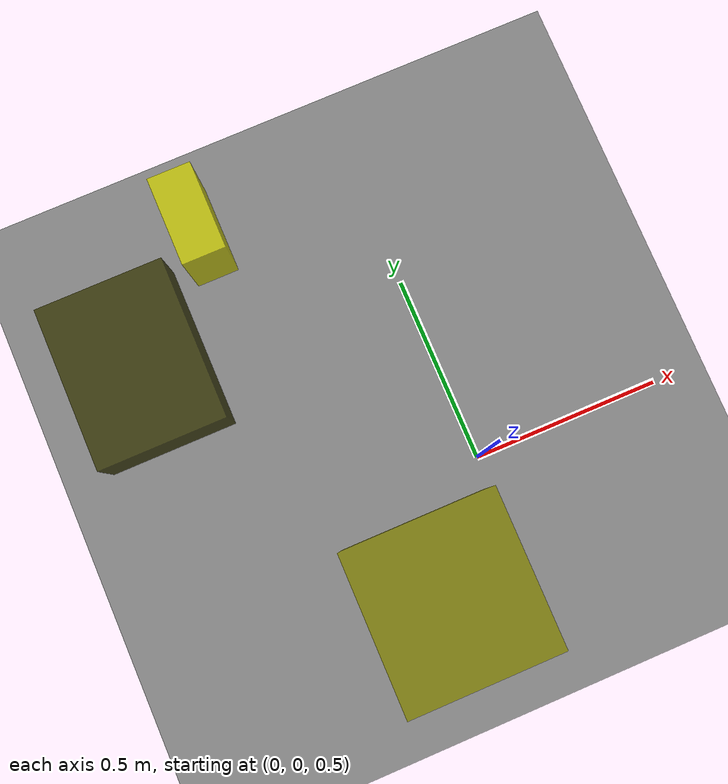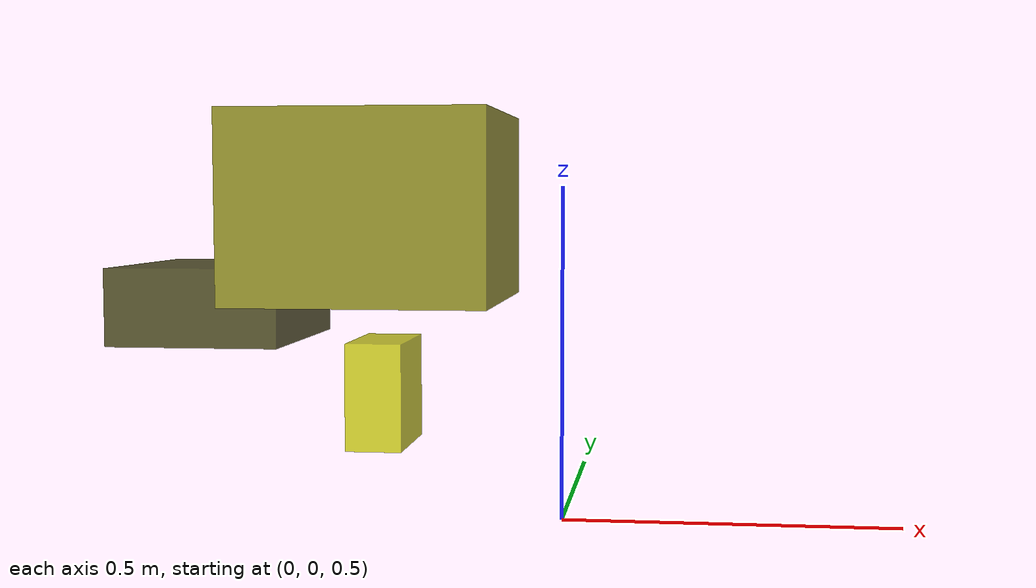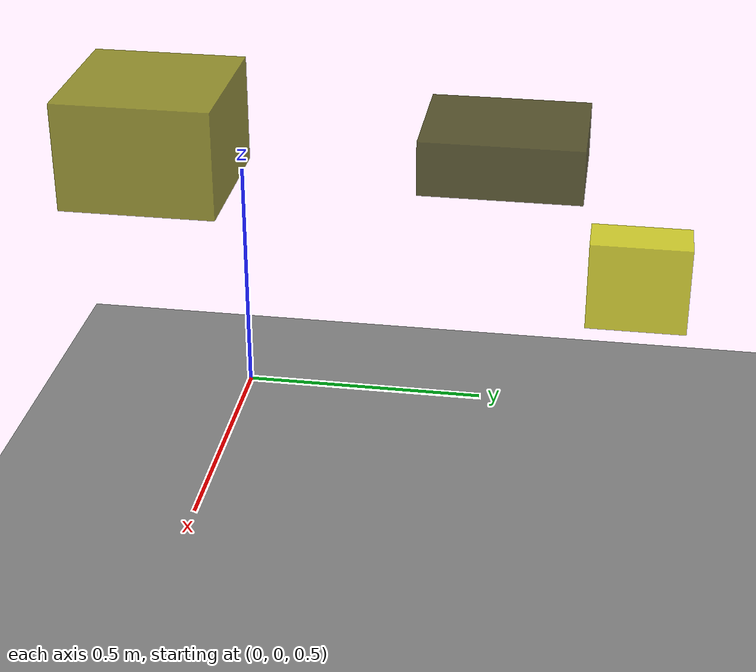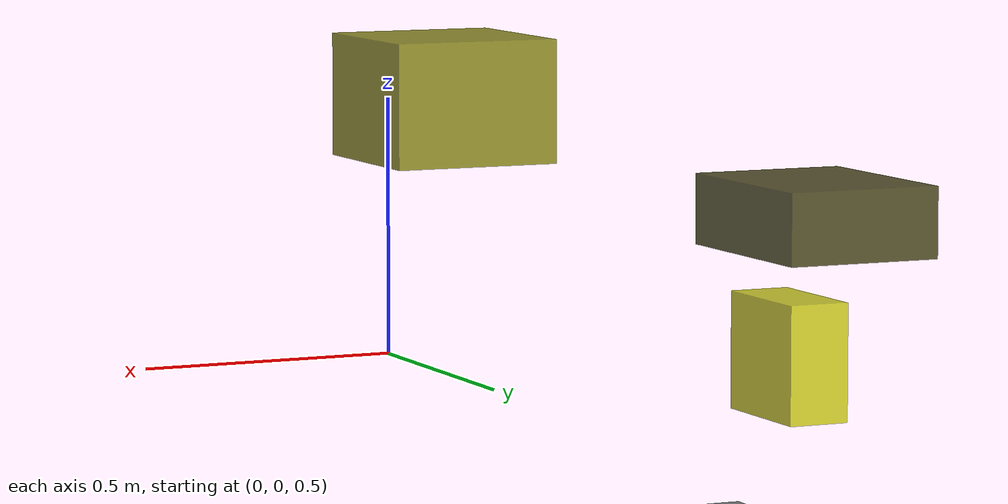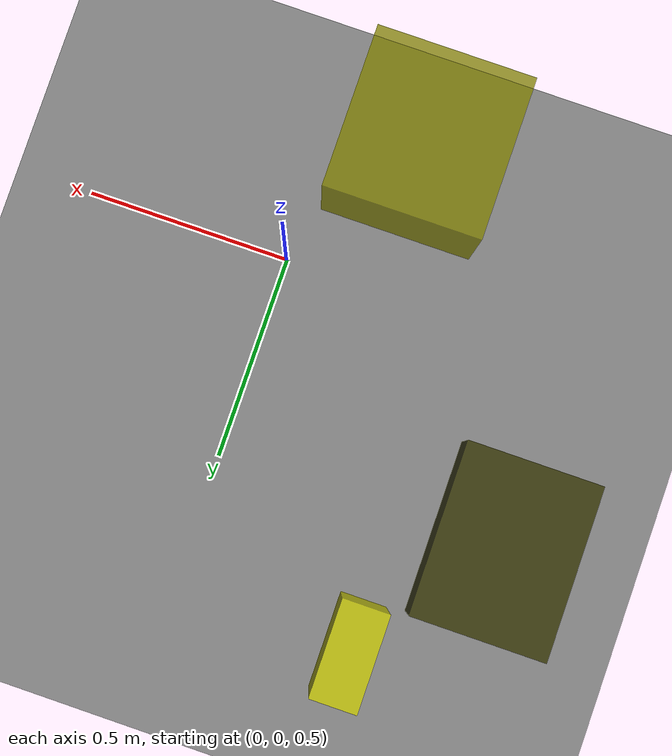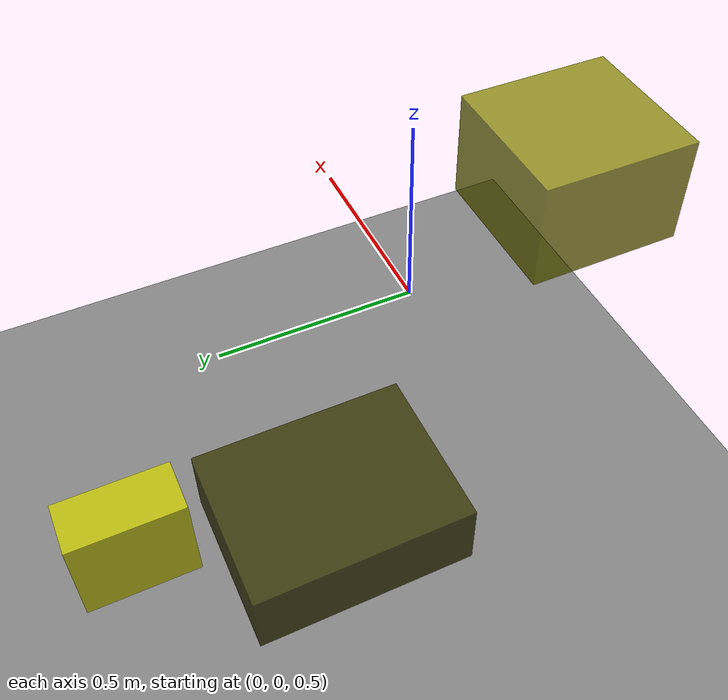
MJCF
<?xml version="1.0"?>
<mujoco model="obstacle_scene">
  <compiler angle="radian" coordinate="local"/>
  <option timestep="0.001" gravity="0 0 -9.81"/>

  <asset>
    <material name="obstacle_mat" rgba="0.8 0.8 0.0 0.8"/>
    <material name="ground_mat" rgba="0.5 0.5 0.5 1"/>
  </asset>

  <worldbody>
    <!-- Ground plane -->
    <geom name="ground" type="plane" size="3 3 0.1" material="ground_mat"/>

    <!-- Obstacles -->
    <body name="obstacle_0" pos="-0.674115 0.490208 0.790213">
      <geom name="obs_0" type="box" size="0.154509 0.198274 0.068871" rgba="0.2 0.2 0.0 0.8"/>
    </body>
    <body name="obstacle_1" pos="-0.226839 -0.253607 0.971432">
      <geom name="obs_1" type="box" size="0.169352 0.173885 0.123847" rgba="0.5 0.5 0.0 0.8"/>
    </body>
    <body name="obstacle_2" pos="-0.439815 0.828851 0.580090">
      <geom name="obs_2" type="box" size="0.057420 0.118014 0.108838" rgba="0.8 0.8 0.0 0.8"/>
    </body>
  </worldbody>
</mujoco>
